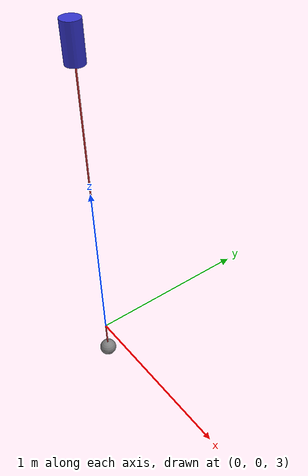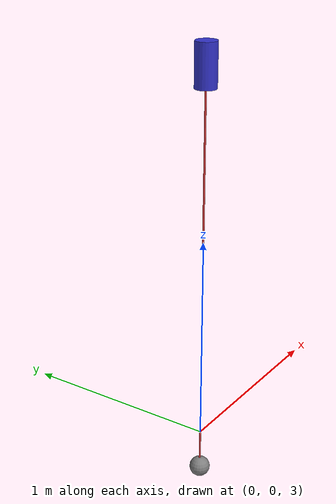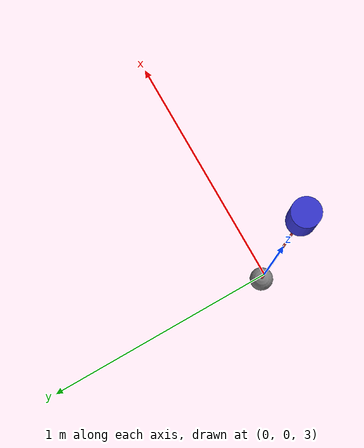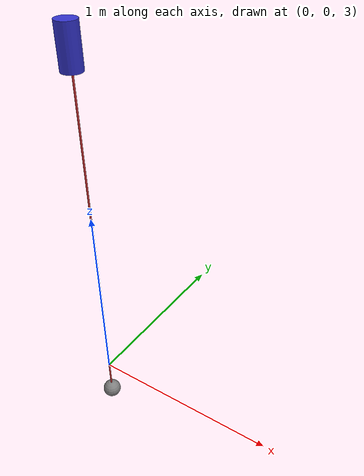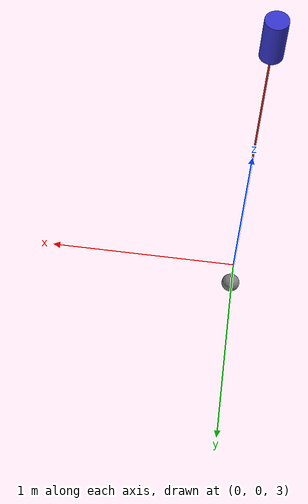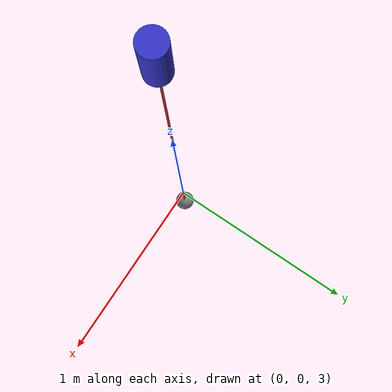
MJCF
<mujoco model="UIAA_101_Validation">
    <compiler angle="degree" coordinate="local" inertiafromgeom="auto"/>

    <option gravity="0 0 -9.81" timestep="0.002" integrator="RK4"/>

    <asset>
        <material name="rope_mat" rgba="0.8 0.2 0.2 1"/>
        <material name="mass_mat" rgba="0.2 0.2 0.8 1"/>
        <texture name="grid_tex" type="2d" builtin="checker" rgb1="0.8 0.8 0.8" rgb2="0.6 0.6 0.6" width="512" height="512"/>
        <material name="grid_mat" texture="grid_tex" texrepeat="20 20" reflectance="0.1" rgba="1 1 1 1"/>
    </asset>

    <worldbody>
        <light pos="0 0 10" dir="0 0 -1"/>
        <geom name="floor" type="plane" pos="0 0 -1" size="5 5 0.1" material="grid_mat"/>

        <site name="anchor" pos="0 0 2.8" size="0.05"/>

        <body name="cylinder_mass" pos="0 0 4.8">
            <freejoint name="mass_free"/>
            <geom name="mass_geom" type="cylinder" mass="80" size="0.05 0.1" material="mass_mat"/>
            <site name="rope_attach" pos="0 0 0" size="0.02"/>
        </body>
    </worldbody>

    <tendon>
        <spatial name="tether" width="0.0045" material="rope_mat">
            <site site="anchor"/>
            <site site="rope_attach"/>
        </spatial>
    </tendon>
</mujoco>
